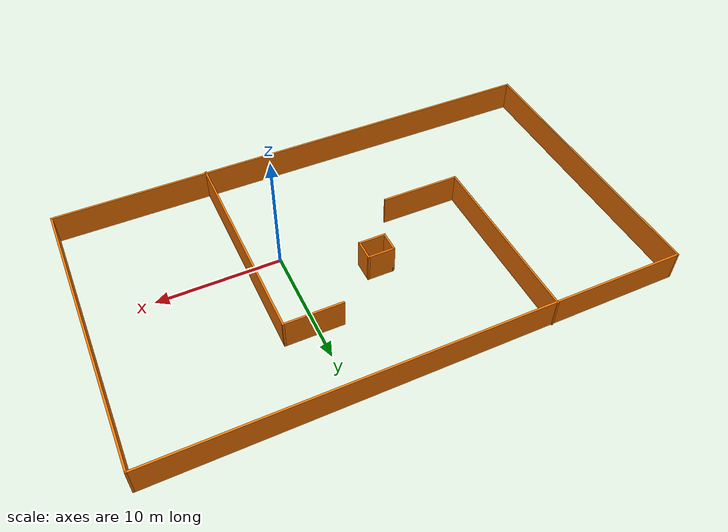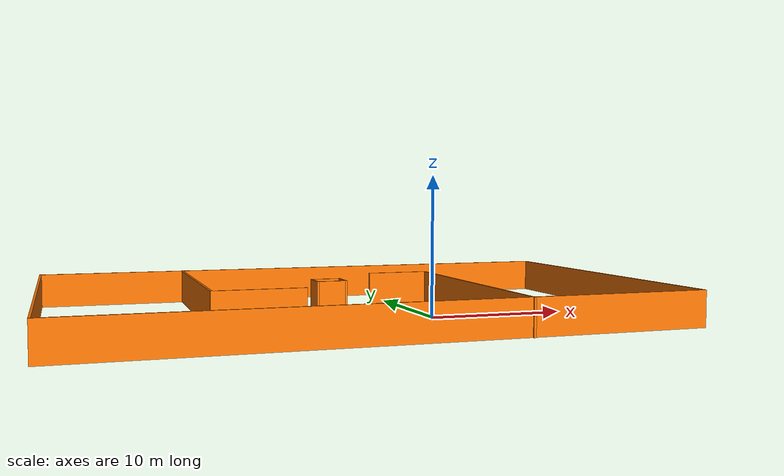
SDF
<?xml version='1.0'?>
<sdf version='1.7'>
  <model name='map1'>
    <pose>-5.60721 2.26948 0 0 -0 0</pose>
    <link name='Wall_1'>
      <collision name='Wall_1_Collision'>
        <geometry>
          <box>
            <size>41.75 0.15 2.5</size>
          </box>
        </geometry>
        <pose>0 0 1.25 0 -0 0</pose>
      </collision>
      <visual name='Wall_1_Visual'>
        <pose>0 0 1.25 0 -0 0</pose>
        <geometry>
          <box>
            <size>41.75 0.15 2.5</size>
          </box>
        </geometry>
        <material>
          <script>
            <uri>file://media/materials/scripts/gazebo.material</uri>
            <name>Gazebo/Grey</name>
          </script>
          <ambient>0.996078 0.47451 0.0196078 1</ambient>
        </material>
        <meta>
          <layer>0</layer>
        </meta>
      </visual>
      <pose>-0 -11.7836 0 0 -0 0</pose>
    </link>
    <link name='Wall_10'>
      <collision name='Wall_10_Collision'>
        <geometry>
          <box>
            <size>6.5 0.15 2.5</size>
          </box>
        </geometry>
        <pose>0 0 1.25 0 -0 0</pose>
      </collision>
      <visual name='Wall_10_Visual'>
        <pose>0 0 1.25 0 -0 0</pose>
        <geometry>
          <box>
            <size>6.5 0.15 2.5</size>
          </box>
        </geometry>
        <material>
          <script>
            <uri>file://media/materials/scripts/gazebo.material</uri>
            <name>Gazebo/Grey</name>
          </script>
          <ambient>0.996078 0.47451 0.0196078 1</ambient>
        </material>
        <meta>
          <layer>0</layer>
        </meta>
      </visual>
      <pose>-6.86374 -2.7088 0 0 -0 0</pose>
    </link>
    <link name='Wall_12'>
      <collision name='Wall_12_Collision'>
        <geometry>
          <box>
            <size>17.5 0.15 2.5</size>
          </box>
        </geometry>
        <pose>0 0 1.25 0 -0 0</pose>
      </collision>
      <visual name='Wall_12_Visual'>
        <pose>0 0 1.25 0 -0 0</pose>
        <geometry>
          <box>
            <size>17.5 0.15 2.5</size>
          </box>
        </geometry>
        <material>
          <script>
            <uri>file://media/materials/scripts/gazebo.material</uri>
            <name>Gazebo/Grey</name>
          </script>
          <ambient>0.996078 0.47451 0.0196078 1</ambient>
        </material>
        <meta>
          <layer>0</layer>
        </meta>
      </visual>
      <pose>8.25541 -3.2162 0 0 -0 1.5708</pose>
    </link>
    <link name='Wall_13'>
      <collision name='Wall_13_Collision'>
        <geometry>
          <box>
            <size>4.75 0.15 2.5</size>
          </box>
        </geometry>
        <pose>0 0 1.25 0 -0 0</pose>
      </collision>
      <visual name='Wall_13_Visual'>
        <pose>0 0 1.25 0 -0 0</pose>
        <geometry>
          <box>
            <size>4.75 0.15 2.5</size>
          </box>
        </geometry>
        <material>
          <script>
            <uri>file://media/materials/scripts/gazebo.material</uri>
            <name>Gazebo/Grey</name>
          </script>
          <ambient>0.996078 0.47451 0.0196078 1</ambient>
        </material>
        <meta>
          <layer>0</layer>
        </meta>
      </visual>
      <pose>5.95541 5.4588 0 0 -0 3.14159</pose>
    </link>
    <link name='Wall_15'>
      <collision name='Wall_15_Collision'>
        <geometry>
          <box>
            <size>2.25 0.15 2.5</size>
          </box>
        </geometry>
        <pose>0 0 1.25 0 -0 0</pose>
      </collision>
      <visual name='Wall_15_Visual'>
        <pose>0 0 1.25 0 -0 0</pose>
        <geometry>
          <box>
            <size>2.25 0.15 2.5</size>
          </box>
        </geometry>
        <material>
          <script>
            <uri>file://media/materials/scripts/gazebo.material</uri>
            <name>Gazebo/Grey</name>
          </script>
          <ambient>0.996078 0.47451 0.0196078 1</ambient>
        </material>
        <meta>
          <layer>0</layer>
        </meta>
      </visual>
      <pose>-0.865536 2.31367 0 0 -0 3.14159</pose>
    </link>
    <link name='Wall_16'>
      <collision name='Wall_16_Collision'>
        <geometry>
          <box>
            <size>1.75 0.15 2.5</size>
          </box>
        </geometry>
        <pose>0 0 1.25 0 -0 0</pose>
      </collision>
      <visual name='Wall_16_Visual'>
        <pose>0 0 1.25 0 -0 0</pose>
        <geometry>
          <box>
            <size>1.75 0.15 2.5</size>
          </box>
        </geometry>
        <material>
          <script>
            <uri>file://media/materials/scripts/gazebo.material</uri>
            <name>Gazebo/Grey</name>
          </script>
          <ambient>0.996078 0.47451 0.0196078 1</ambient>
        </material>
        <meta>
          <layer>0</layer>
        </meta>
      </visual>
      <pose>-1.91554 1.51367 0 0 -0 -1.5708</pose>
    </link>
    <link name='Wall_17'>
      <collision name='Wall_17_Collision'>
        <geometry>
          <box>
            <size>2.25 0.15 2.5</size>
          </box>
        </geometry>
        <pose>0 0 1.25 0 -0 0</pose>
      </collision>
      <visual name='Wall_17_Visual'>
        <pose>0 0 1.25 0 -0 0</pose>
        <geometry>
          <box>
            <size>2.25 0.15 2.5</size>
          </box>
        </geometry>
        <material>
          <script>
            <uri>file://media/materials/scripts/gazebo.material</uri>
            <name>Gazebo/Grey</name>
          </script>
          <ambient>0.996078 0.47451 0.0196078 1</ambient>
        </material>
        <meta>
          <layer>0</layer>
        </meta>
      </visual>
      <pose>-0.865536 0.713672 0 0 -0 0</pose>
    </link>
    <link name='Wall_18'>
      <collision name='Wall_18_Collision'>
        <geometry>
          <box>
            <size>1.75 0.15 2.5</size>
          </box>
        </geometry>
        <pose>0 0 1.25 0 -0 0</pose>
      </collision>
      <visual name='Wall_18_Visual'>
        <pose>0 0 1.25 0 -0 0</pose>
        <geometry>
          <box>
            <size>1.75 0.15 2.5</size>
          </box>
        </geometry>
        <material>
          <script>
            <uri>file://media/materials/scripts/gazebo.material</uri>
            <name>Gazebo/Grey</name>
          </script>
          <ambient>0.996078 0.47451 0.0196078 1</ambient>
        </material>
        <meta>
          <layer>0</layer>
        </meta>
      </visual>
      <pose>0.184464 1.51367 0 0 -0 1.5708</pose>
    </link>
    <link name='Wall_2'>
      <collision name='Wall_2_Collision'>
        <geometry>
          <box>
            <size>23.75 0.15 2.5</size>
          </box>
        </geometry>
        <pose>0 0 1.25 0 -0 0</pose>
      </collision>
      <visual name='Wall_2_Visual'>
        <pose>0 0 1.25 0 -0 0</pose>
        <geometry>
          <box>
            <size>23.75 0.15 2.5</size>
          </box>
        </geometry>
        <material>
          <script>
            <uri>file://media/materials/scripts/gazebo.material</uri>
            <name>Gazebo/Grey</name>
          </script>
          <ambient>0.996078 0.47451 0.0196078 1</ambient>
        </material>
        <meta>
          <layer>0</layer>
        </meta>
      </visual>
      <pose>20.8 0.016416 0 0 -0 1.5708</pose>
    </link>
    <link name='Wall_6'>
      <collision name='Wall_6_Collision'>
        <geometry>
          <box>
            <size>23.75 0.15 2.5</size>
          </box>
        </geometry>
        <pose>0 0 1.25 0 -0 0</pose>
      </collision>
      <visual name='Wall_6_Visual'>
        <pose>0 0 1.25 0 -0 0</pose>
        <geometry>
          <box>
            <size>23.75 0.15 2.5</size>
          </box>
        </geometry>
        <material>
          <script>
            <uri>file://media/materials/scripts/gazebo.material</uri>
            <name>Gazebo/Grey</name>
          </script>
          <ambient>0.996078 0.47451 0.0196078 1</ambient>
        </material>
        <meta>
          <layer>0</layer>
        </meta>
      </visual>
      <pose>-20.8 0.016416 0 0 -0 1.5708</pose>
    </link>
    <link name='Wall_7'>
      <collision name='Wall_7_Collision'>
        <geometry>
          <box>
            <size>41.75 0.15 2.5</size>
          </box>
        </geometry>
        <pose>0 0 1.25 0 -0 0</pose>
      </collision>
      <visual name='Wall_7_Visual'>
        <pose>0 0 1.25 0 -0 0</pose>
        <geometry>
          <box>
            <size>41.75 0.15 2.5</size>
          </box>
        </geometry>
        <material>
          <script>
            <uri>file://media/materials/scripts/gazebo.material</uri>
            <name>Gazebo/Grey</name>
          </script>
          <ambient>0.996078 0.47451 0.0196078 1</ambient>
        </material>
        <meta>
          <layer>0</layer>
        </meta>
      </visual>
      <pose>-0 11.8164 0 0 -0 0</pose>
    </link>
    <link name='Wall_9'>
      <collision name='Wall_9_Collision'>
        <geometry>
          <box>
            <size>14.75 0.15 2.5</size>
          </box>
        </geometry>
        <pose>0 0 1.25 0 -0 0</pose>
      </collision>
      <visual name='Wall_9_Visual'>
        <pose>0 0 1.25 0 -0 0</pose>
        <geometry>
          <box>
            <size>14.75 0.15 2.5</size>
          </box>
        </geometry>
        <material>
          <script>
            <uri>file://media/materials/scripts/gazebo.material</uri>
            <name>Gazebo/Grey</name>
          </script>
          <ambient>0.996078 0.47451 0.0196078 1</ambient>
        </material>
        <meta>
          <layer>0</layer>
        </meta>
      </visual>
      <pose>-10.0387 4.5912 0 0 -0 -1.5708</pose>
    </link>
    <static>1</static>
  </model>
</sdf>
